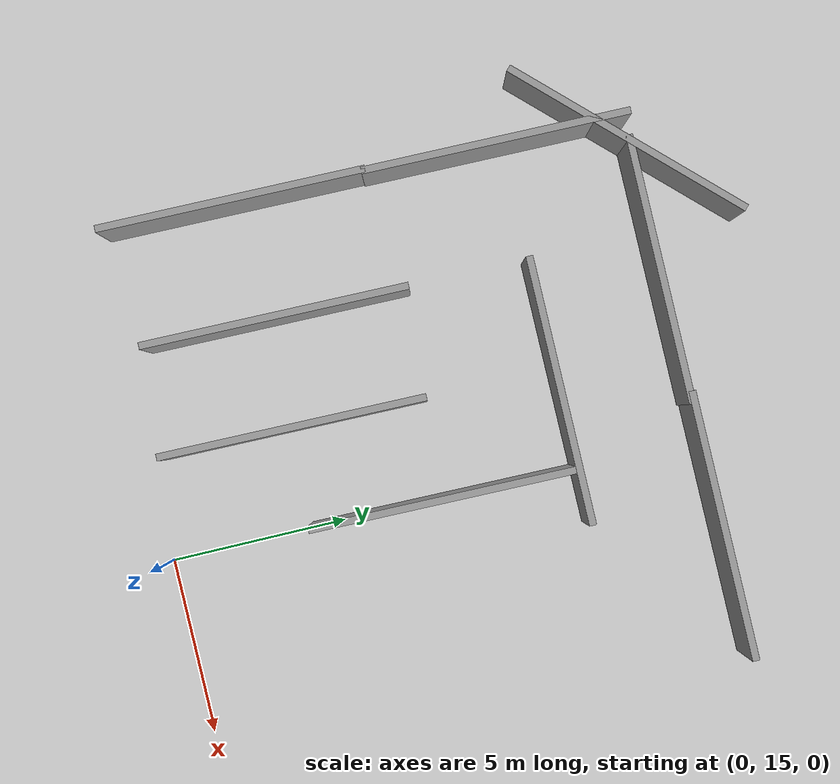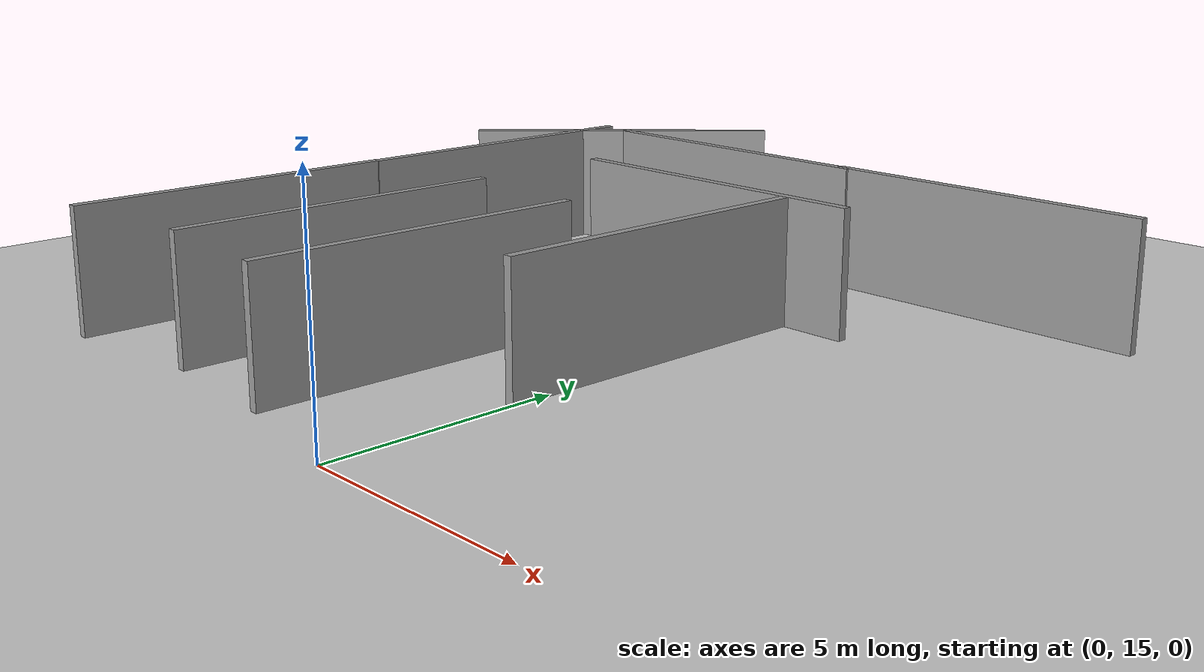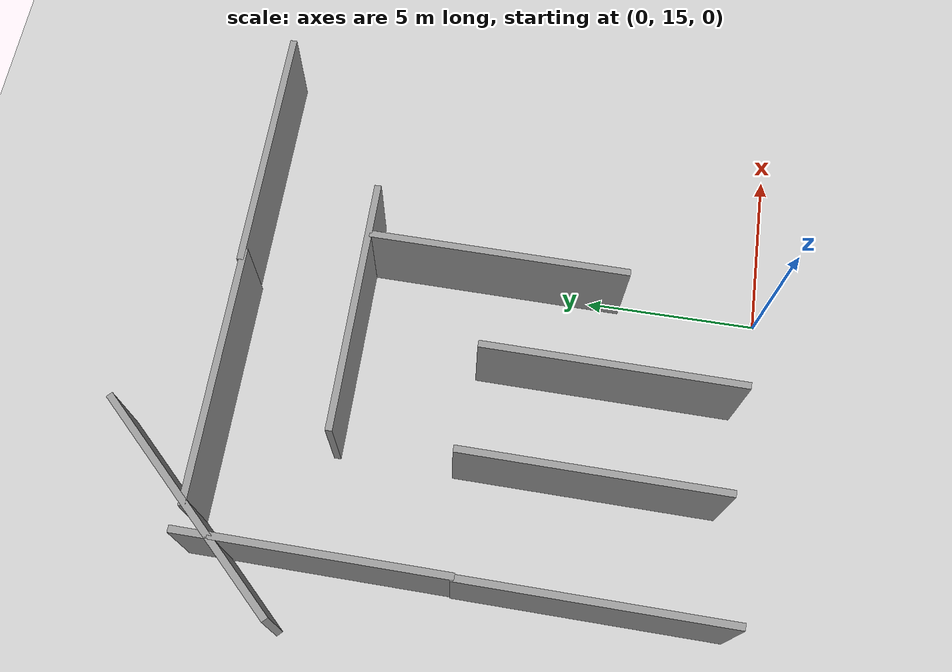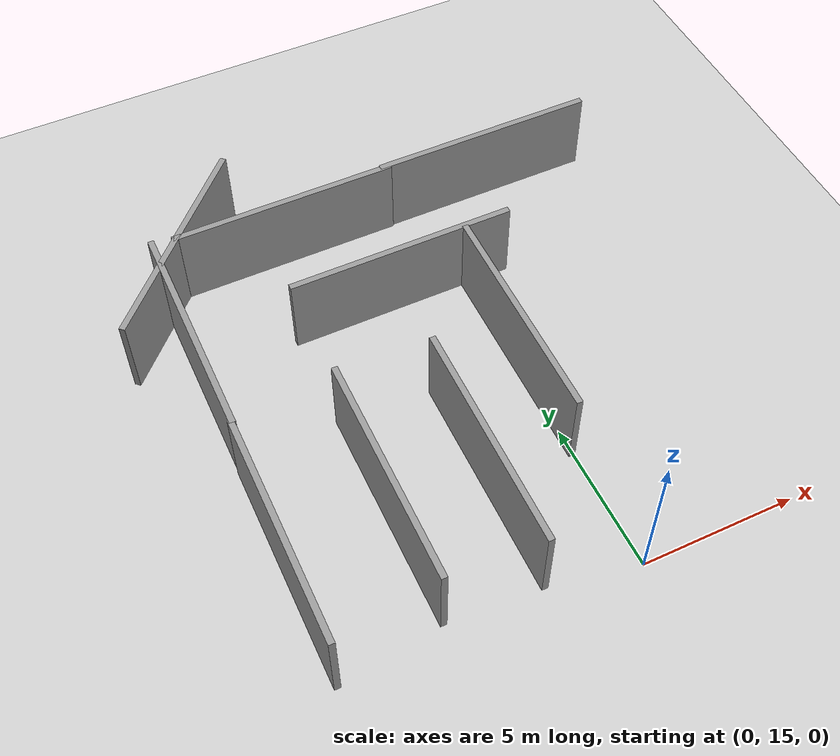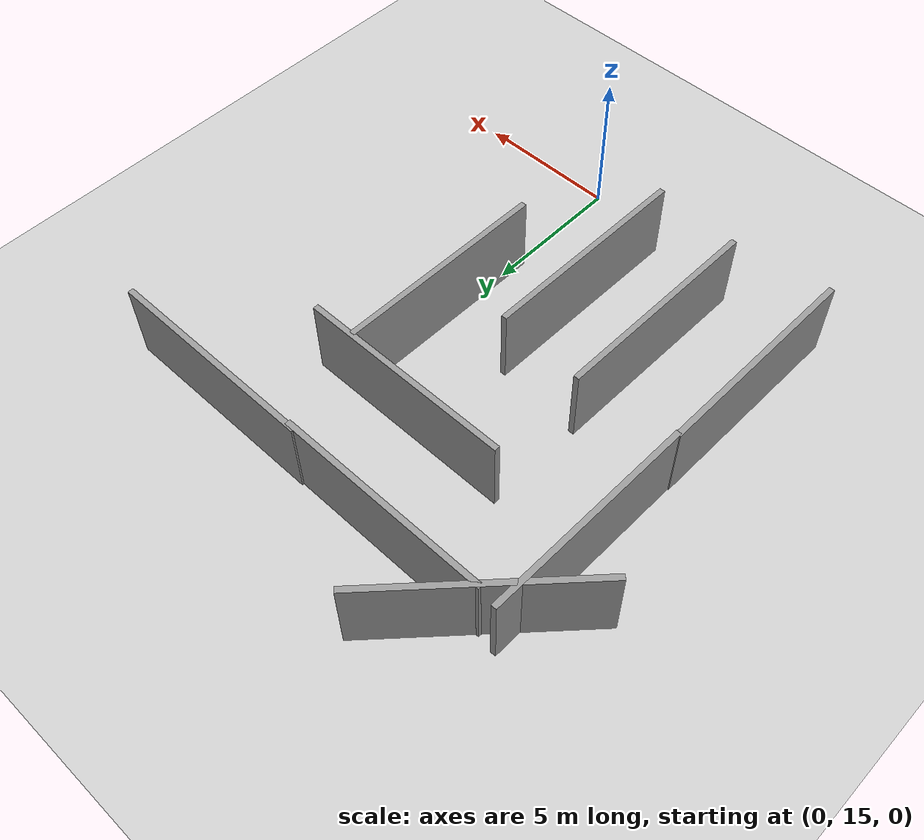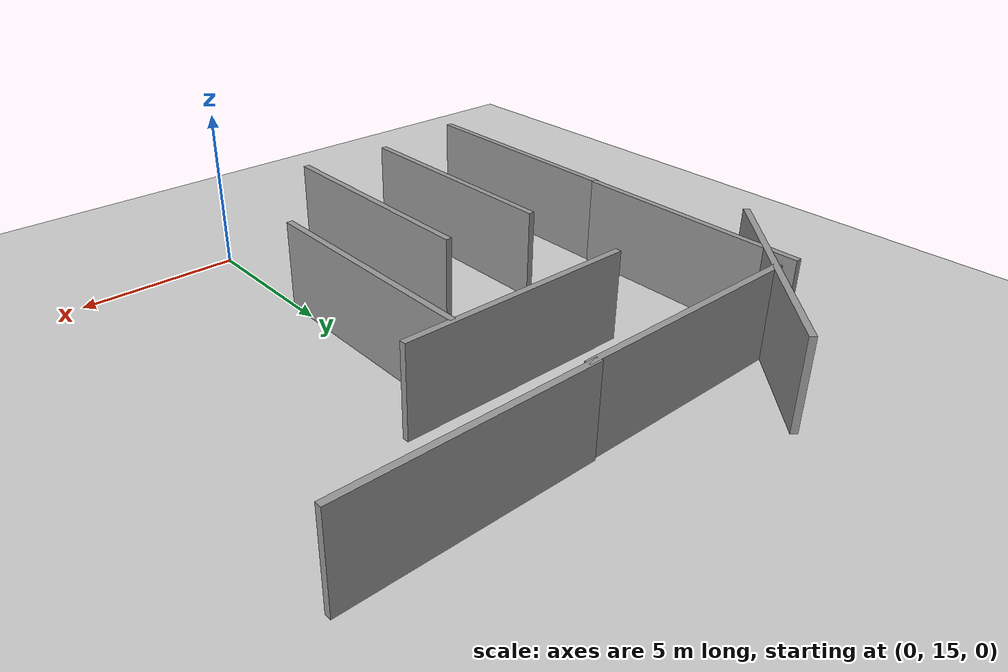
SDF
<sdf version="1.7">
 <world name="default">
  <model name="ground_plane">
   <static>1</static>
   <link name="link">
    <collision name="collision">
     <geometry><plane><normal>0 0 1</normal><size>100 100</size></plane></geometry>
     <surface><friction><ode><mu>100</mu><mu2>50</mu2></ode></friction></surface>
    </collision>
    <visual name="visual">
     <cast_shadows>0</cast_shadows>
     <geometry><plane><normal>0 0 1</normal><size>100 100</size></plane></geometry>
     <material>
      <script><uri>file://media/materials/scripts/gazebo.material</uri><name>Gazebo/Grey</name></script>
     </material>
    </visual>
   </link>
  </model>
  <model name="grey_wall_2_clone_4_clone">
   <static>1</static>
   <link name="link">
    <pose>0 0 1.4 0 -0 0</pose>
    <collision name="collision"><geometry><box><size>7.5 0.2 2.8</size></box></geometry></collision>
    <visual name="visual">
     <cast_shadows>0</cast_shadows>
     <geometry><box><size>7.5 0.2 2.8</size></box></geometry>
     <material>
      <script>
       <uri>model://grey_wall/materials/scripts</uri>
       <uri>model://grey_wall/materials/textures</uri>
       <name>vrc/grey_wall</name>
      </script>
     </material>
    </visual>
   </link>
   <pose>-9.27879 19.0745 0 0 -0 1.5595</pose>
  </model>
  <model name="grey_wall_clone_0">
   <static>1</static>
   <link name="link">
    <pose>0 0 1.4 0 -0 0</pose>
    <collision name="collision"><geometry><box><size>7.5 0.2 2.8</size></box></geometry></collision>
    <visual name="visual">
     <cast_shadows>0</cast_shadows>
     <geometry><box><size>7.5 0.2 2.8</size></box></geometry>
     <material>
      <script>
       <uri>model://grey_wall/materials/scripts</uri>
       <uri>model://grey_wall/materials/textures</uri>
       <name>vrc/grey_wall</name>
      </script>
     </material>
    </visual>
   </link>
   <pose>2.4177 30.0728 0 0 -0 0</pose>
  </model>
  <model name="grey_wall_clone_1">
   <static>1</static>
   <link name="link">
    <pose>0 0 1.4 0 -0 0</pose>
    <collision name="collision"><geometry><box><size>7.5 0.2 2.8</size></box></geometry></collision>
    <visual name="visual">
     <cast_shadows>0</cast_shadows>
     <geometry><box><size>7.5 0.2 2.8</size></box></geometry>
     <material>
      <script>
       <uri>model://grey_wall/materials/scripts</uri>
       <uri>model://grey_wall/materials/textures</uri>
       <name>vrc/grey_wall</name>
      </script>
     </material>
    </visual>
   </link>
   <pose>-4.73976 30.0145 0 0 -0 0</pose>
  </model>
  <model name="grey_wall_2_clone_4_clone_clone">
   <static>1</static>
   <link name="link">
    <pose>0 0 1.4 0 -0 0</pose>
    <collision name="collision"><geometry><box><size>7.5 0.2 2.8</size></box></geometry></collision>
    <visual name="visual">
     <cast_shadows>0</cast_shadows>
     <geometry><box><size>7.5 0.2 2.8</size></box></geometry>
     <material>
      <script>
       <uri>model://grey_wall/materials/scripts</uri>
       <uri>model://grey_wall/materials/textures</uri>
       <name>vrc/grey_wall</name>
      </script>
     </material>
    </visual>
   </link>
   <pose>-9.1625 26.4649 0 0 -0 1.5595</pose>
  </model>
  <model name="grey_wall_2_clone_4_clone_clone_0">
   <static>1</static>
   <link name="link">
    <pose>0 0 1.4 0 -0 0</pose>
    <collision name="collision"><geometry><box><size>7.5 0.2 2.8</size></box></geometry></collision>
    <visual name="visual">
     <cast_shadows>0</cast_shadows>
     <geometry><box><size>7.5 0.2 2.8</size></box></geometry>
     <material>
      <script>
       <uri>model://grey_wall/materials/scripts</uri>
       <uri>model://grey_wall/materials/textures</uri>
       <name>vrc/grey_wall</name>
      </script>
     </material>
    </visual>
   </link>
   <pose>-8.40576 29.9563 0 0 -0 0.807336</pose>
  </model>
  <model name="grey_wall_2_clone_4_clone_2_clone">
   <static>1</static>
   <link name="link">
    <pose>0 0 1.4 0 -0 0</pose>
    <collision name="collision"><geometry><box><size>7.5 0.2 2.8</size></box></geometry></collision>
    <visual name="visual">
     <cast_shadows>0</cast_shadows>
     <geometry><box><size>7.5 0.2 2.8</size></box></geometry>
     <material>
      <script>
       <uri>model://grey_wall/materials/scripts</uri>
       <uri>model://grey_wall/materials/textures</uri>
       <name>vrc/grey_wall</name>
      </script>
     </material>
    </visual>
   </link>
   <pose>-0.009862 22.8403 0 0 -0 1.5595</pose>
  </model>
  <model name="grey_wall_2_clone_4_clone_2_clone_5">
   <static>1</static>
   <link name="link">
    <pose>0 0 1.4 0 -0 0</pose>
    <collision name="collision"><geometry><box><size>7.5 0.2 2.8</size></box></geometry></collision>
    <visual name="visual">
     <cast_shadows>0</cast_shadows>
     <geometry><box><size>7.5 0.2 2.8</size></box></geometry>
     <material>
      <script>
       <uri>model://grey_wall/materials/scripts</uri>
       <uri>model://grey_wall/materials/textures</uri>
       <name>vrc/grey_wall</name>
      </script>
     </material>
    </visual>
   </link>
   <pose>-5.91543 19.5076 0 0 -0 1.5595</pose>
  </model>
  <model name="grey_wall_clone_0_clone">
   <static>1</static>
   <link name="link">
    <pose>0 0 1.4 0 -0 0</pose>
    <collision name="collision"><geometry><box><size>7.5 0.2 2.8</size></box></geometry></collision>
    <visual name="visual">
     <cast_shadows>0</cast_shadows>
     <geometry><box><size>7.5 0.2 2.8</size></box></geometry>
     <material>
      <script>
       <uri>model://grey_wall/materials/scripts</uri>
       <uri>model://grey_wall/materials/textures</uri>
       <name>vrc/grey_wall</name>
      </script>
     </material>
    </visual>
   </link>
   <pose>-2.1544 26.6226 0 0 -0 0</pose>
  </model>
  <model name="grey_wall_2_clone_4_clone_2_clone_5_clone">
   <static>1</static>
   <link name="link">
    <pose>0 0 1.4 0 -0 0</pose>
    <collision name="collision"><geometry><box><size>7.5 0.2 2.8</size></box></geometry></collision>
    <visual name="visual">
     <cast_shadows>0</cast_shadows>
     <geometry><box><size>7.5 0.2 2.8</size></box></geometry>
     <material>
      <script>
       <uri>model://grey_wall/materials/scripts</uri>
       <uri>model://grey_wall/materials/textures</uri>
       <name>vrc/grey_wall</name>
      </script>
     </material>
    </visual>
   </link>
   <pose>-2.86602 19.2848 0 0 -0 1.5595</pose>
  </model>
 </world>
</sdf>
